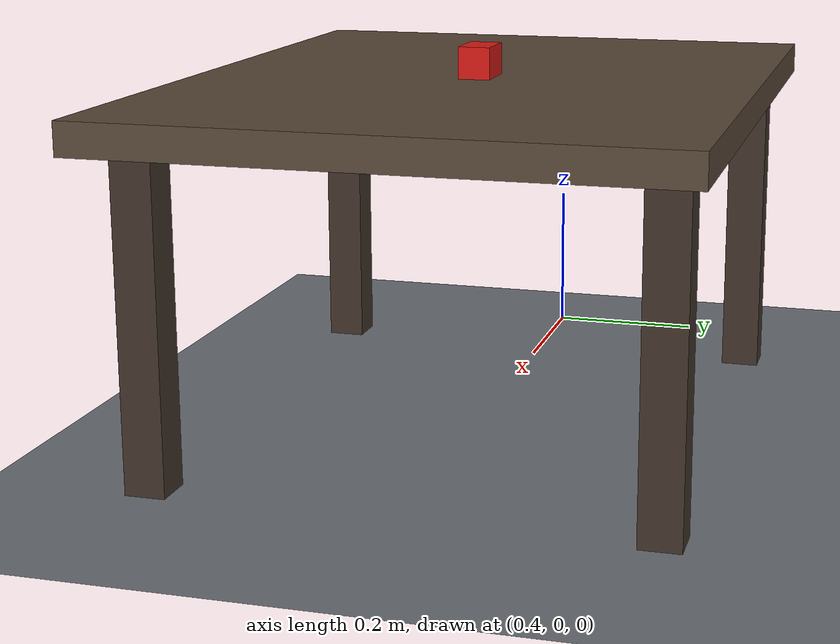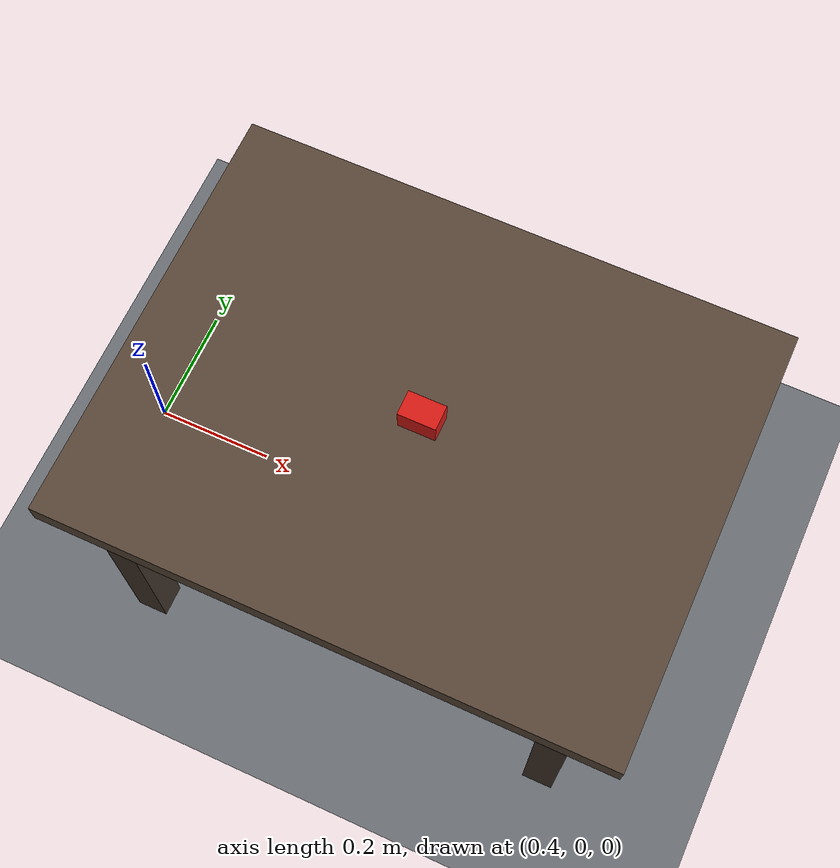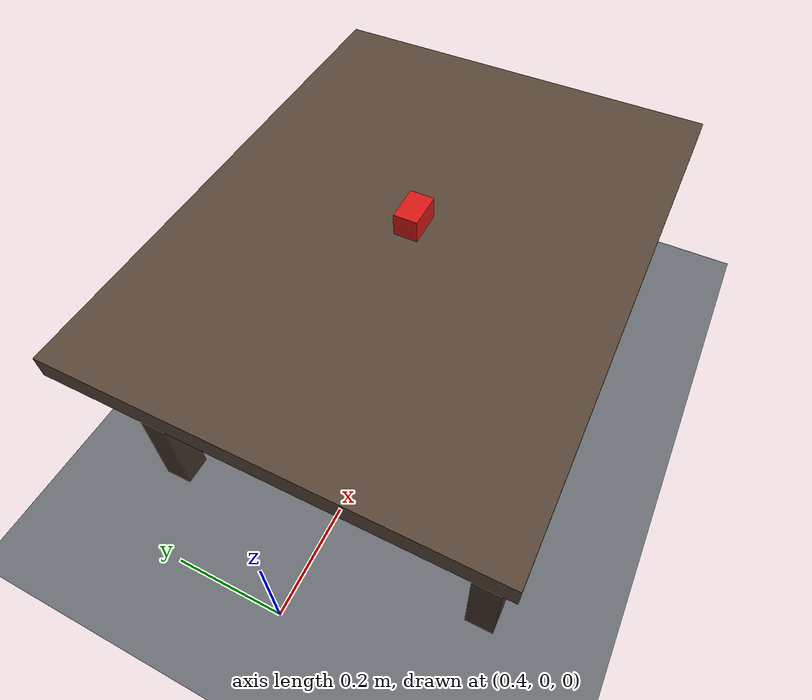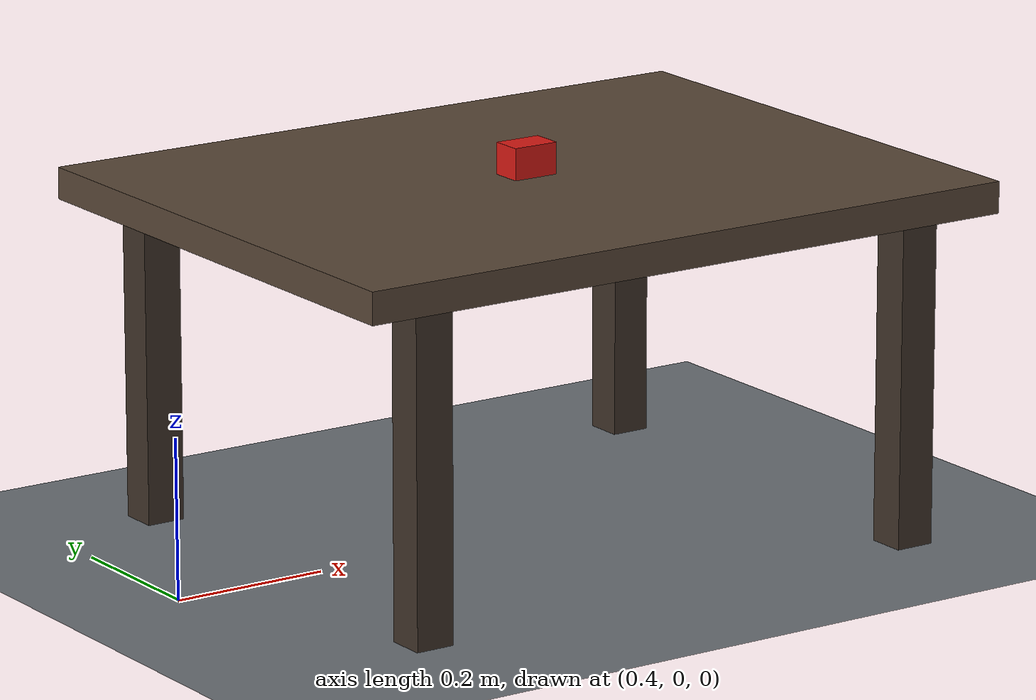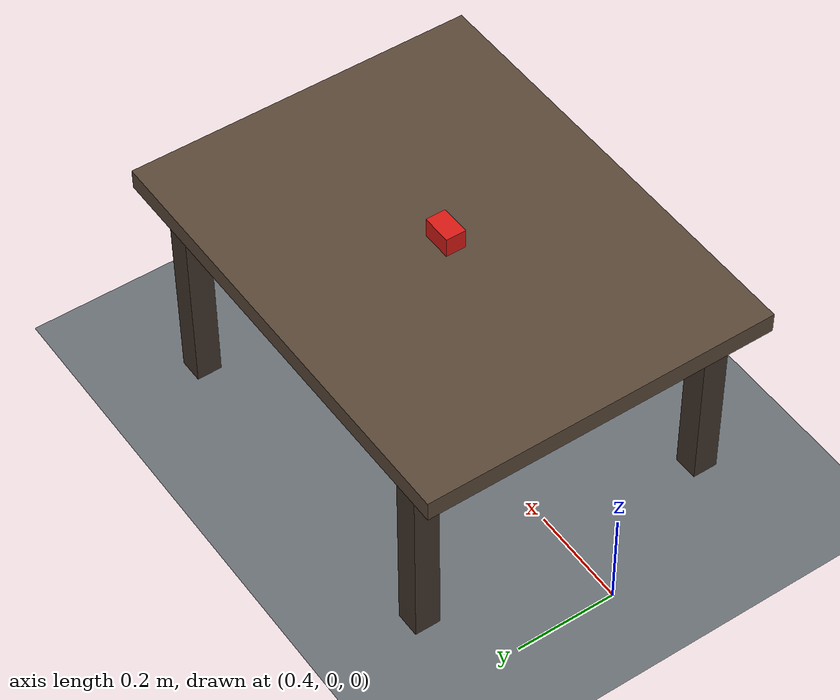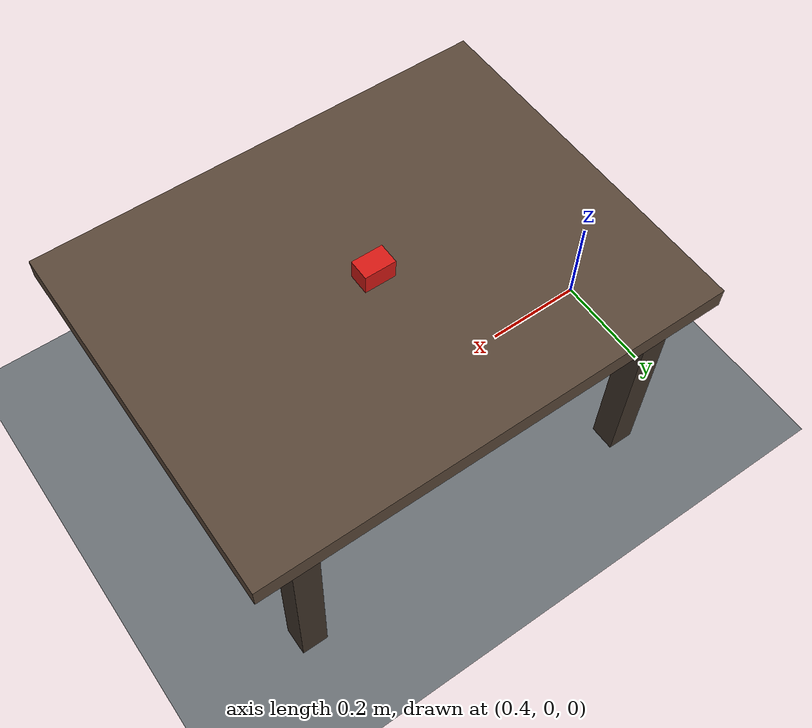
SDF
<?xml version="1.0"?>
<sdf version="1.6">
  <world name="rl_world">
    <include><uri>model://sun</uri></include>

    <!-- 地面 -->
    <model name="ground">
      <static>true</static>
      <link name="link">
        <collision name="col">
          <geometry><plane><normal>0 0 1</normal><size>20 20</size></plane></geometry>
        </collision>
        <visual name="vis">
          <geometry><plane><normal>0 0 1</normal><size>20 20</size></plane></geometry>
          <material><ambient>0.42 0.44 0.46 1</ambient><diffuse>0.42 0.44 0.46 1</diffuse></material>
        </visual>
      </link>
    </model>

    <!-- 矮工作台（台面顶 z=0.45，与训练场景一致；visual-only） -->
    <model name="rl_bench">
      <static>true</static>
      <link name="link">
        <visual name="top">
          <pose>0.90 0 0.43 0 0 0</pose>
          <geometry><box><size>0.90 0.70 0.04</size></box></geometry>
          <material><ambient>0.35 0.28 0.22 1</ambient><diffuse>0.35 0.28 0.22 1</diffuse></material>
        </visual>
        <visual name="leg1"><pose>0.55 -0.30 0.205 0 0 0</pose>
          <geometry><box><size>0.05 0.05 0.41</size></box></geometry>
          <material><ambient>0.25 0.2 0.16 1</ambient><diffuse>0.25 0.2 0.16 1</diffuse></material></visual>
        <visual name="leg2"><pose>1.25 -0.30 0.205 0 0 0</pose>
          <geometry><box><size>0.05 0.05 0.41</size></box></geometry>
          <material><ambient>0.25 0.2 0.16 1</ambient><diffuse>0.25 0.2 0.16 1</diffuse></material></visual>
        <visual name="leg3"><pose>0.55 0.30 0.205 0 0 0</pose>
          <geometry><box><size>0.05 0.05 0.41</size></box></geometry>
          <material><ambient>0.25 0.2 0.16 1</ambient><diffuse>0.25 0.2 0.16 1</diffuse></material></visual>
        <visual name="leg4"><pose>1.25 0.30 0.205 0 0 0</pose>
          <geometry><box><size>0.05 0.05 0.41</size></box></geometry>
          <material><ambient>0.25 0.2 0.16 1</ambient><diffuse>0.25 0.2 0.16 1</diffuse></material></visual>
      </link>
    </model>

    <!-- 可移动被摄主体（红盒，尺寸与训练一致） -->
    <model name="rl_subject">
      <pose>0.90 0 0.47 0 0 0</pose>
      <link name="link">
        <gravity>false</gravity>
        <inertial>
          <mass>0.1</mass>
          <inertia><ixx>1e-4</ixx><iyy>1e-4</iyy><izz>1e-4</izz>
                   <ixy>0</ixy><ixz>0</ixz><iyz>0</iyz></inertia>
        </inertial>
        <visual name="red_box">
          <geometry><box><size>0.06 0.04 0.04</size></box></geometry>
          <material><ambient>0.85 0.10 0.08 1</ambient><diffuse>0.85 0.10 0.08 1</diffuse></material>
        </visual>
      </link>
      <plugin name="planar_move" filename="libgazebo_ros_planar_move.so">
        <ros><namespace>/rl_subject</namespace></ros>
        <command_topic>cmd_vel</command_topic>
        <odometry_topic>odom</odometry_topic>
        <odometry_frame>world</odometry_frame>
        <robot_base_frame>link</robot_base_frame>
        <odometry_rate>50.0</odometry_rate>
      </plugin>
    </model>

    <physics type="ode">
      <max_step_size>0.001</max_step_size>
      <real_time_update_rate>1000</real_time_update_rate>
    </physics>
  </world>
</sdf>
